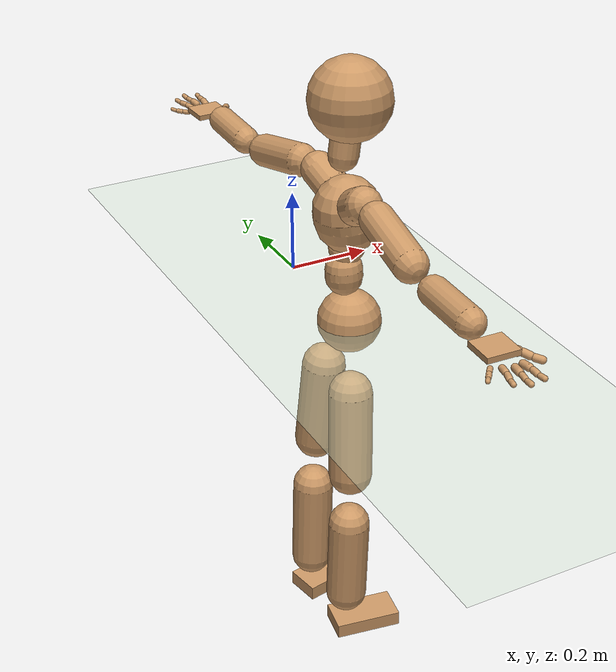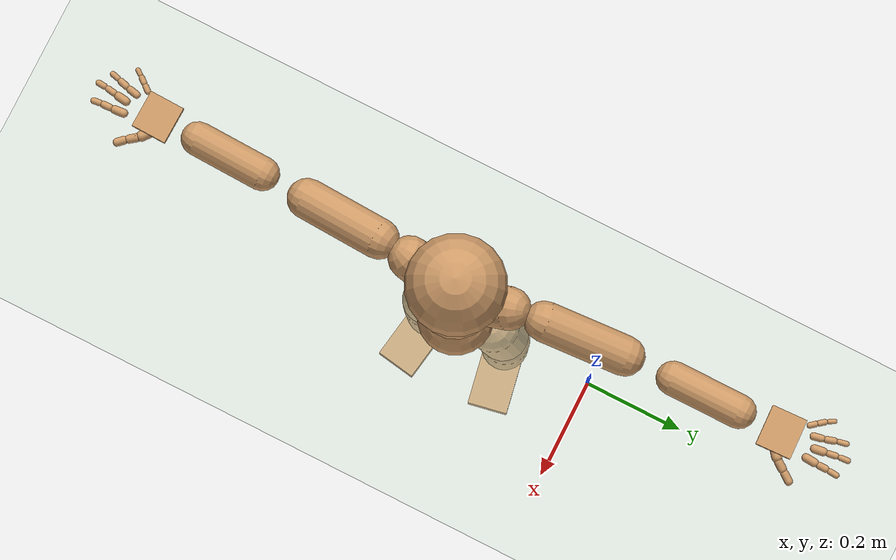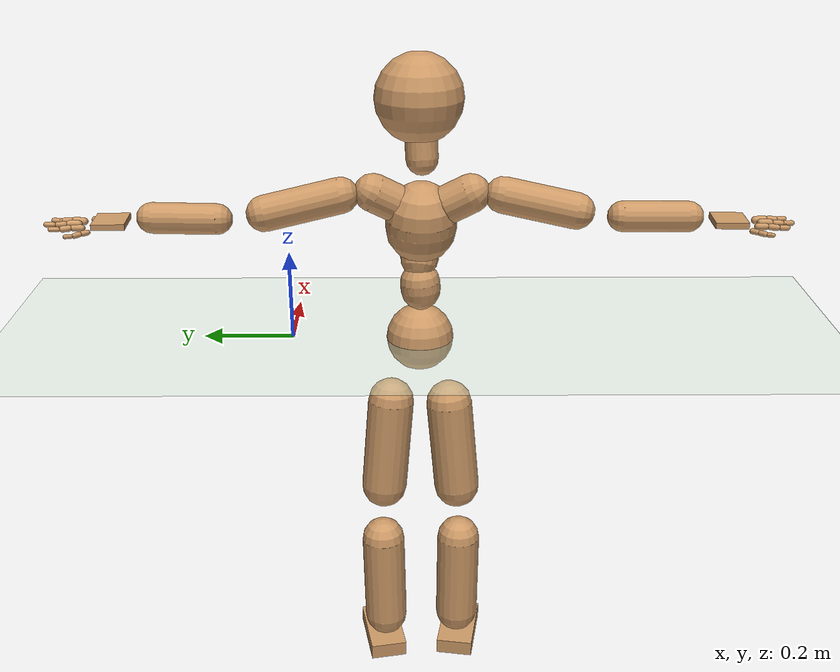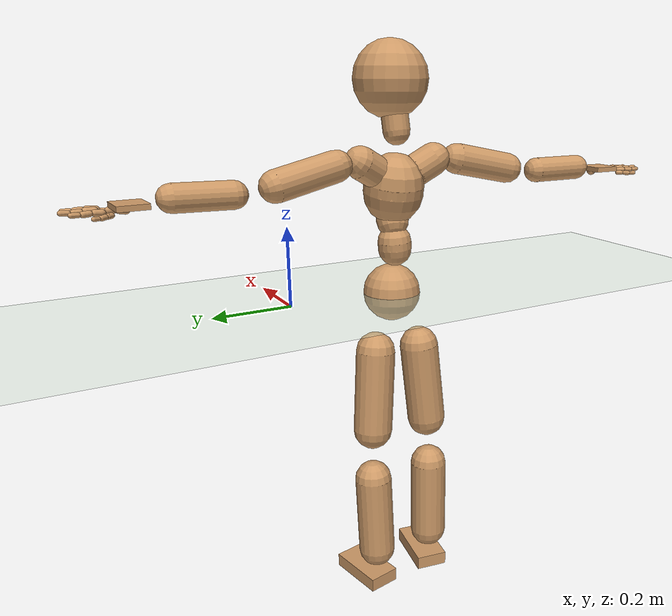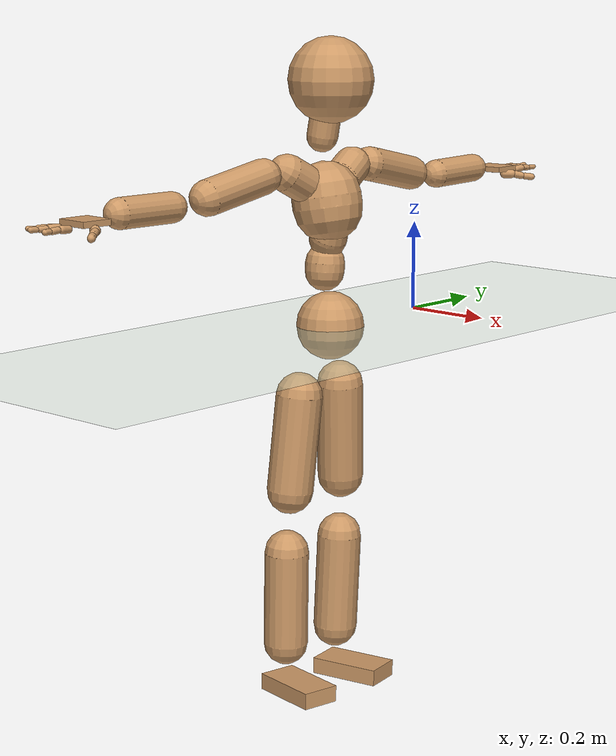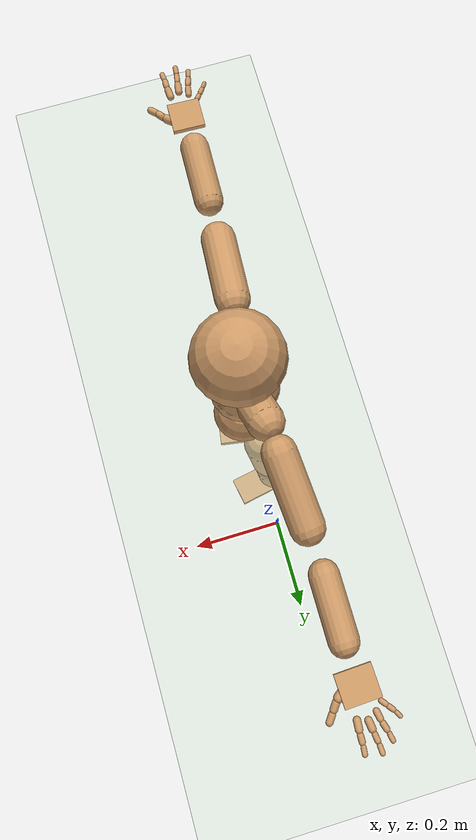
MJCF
<mujoco model="humanoid">
  <compiler coordinate="local" angle="radian"/>
  <default>
    <joint damping="0.0" armature="0.01" stiffness="0.0" limited="true"/>
    <geom conaffinity="1" condim="3" contype="7" margin="0.001" rgba="0.8 0.6 .4 1"/>
  </default>
  <asset>
    <texture type="skybox" builtin="gradient" rgb1=".4 .5 .6" rgb2="0 0 0" width="100" height="100"/>
    <texture builtin="flat" height="1278" mark="cross" markrgb="1 1 1" name="texgeom" random="0.01" rgb1="0.8 0.6 0.4" rgb2="0.8 0.6 0.4" type="cube" width="127"/>
    <texture builtin="checker" height="100" name="texplane" rgb1="0 0 0" rgb2="0.8 0.8 0.8" type="2d" width="100"/>
    <material name="MatPlane" reflectance="0.5" shininess="1" specular="1" texrepeat="60 60" texture="texplane"/>
    <material name="geom" texture="texgeom" texuniform="true"/>
  </asset>
  <worldbody>
    <light cutoff="100" diffuse="1 1 1" dir="-0 0 -1.3" directional="true" exponent="1" pos="0 0 1.3" specular=".1 .1 .1"/>
    <geom conaffinity="1" condim="3" name="floor" pos="0 0 0" rgba="0.8 0.9 0.8 1" size="100 100 .2" type="plane" material="MatPlane"/>
    <body name="Pelvis" pos="0.0004 -0.2873 -0.0012">
      <freejoint name="Pelvis"/>
      <geom type="sphere" contype="1" conaffinity="1" density="500" size="0.0757" pos="0.0000 0.0000 0.0000" name="Pelvis"/>
      <body name="L_Hip" pos="-0.0268 0.0611 -0.0744">
        <joint name="L_Hip_x" type="hinge" pos="0 0 0" axis="1 0 0" stiffness="800" damping="80" armature="0.02" range="-180.0000 180.0000"/>
        <joint name="L_Hip_y" type="hinge" pos="0 0 0" axis="0 1 0" stiffness="800" damping="80" armature="0.02" range="-180.0000 180.0000"/>
        <joint name="L_Hip_z" type="hinge" pos="0 0 0" axis="0 0 1" stiffness="800" damping="80" armature="0.02" range="-180.0000 180.0000"/>
        <geom type="capsule" contype="1" conaffinity="1" density="500" fromto="-0.0044 0.0059 -0.0731 -0.0175 0.0237 -0.2922" size="0.0523" name="L_Hip"/>
        <body name="L_Knee" pos="-0.0219 0.0296 -0.3653">
          <joint name="L_Knee_x" type="hinge" pos="0 0 0" axis="1 0 0" stiffness="800" damping="80" armature="0.02" range="-180.0000 180.0000"/>
          <joint name="L_Knee_y" type="hinge" pos="0 0 0" axis="0 1 0" stiffness="800" damping="80" armature="0.02" range="-180.0000 180.0000"/>
          <joint name="L_Knee_z" type="hinge" pos="0 0 0" axis="0 0 1" stiffness="800" damping="80" armature="0.02" range="-180.0000 180.0000"/>
          <geom type="capsule" contype="1" conaffinity="1" density="500" fromto="-0.0028 -0.0015 -0.0734 -0.0111 -0.0059 -0.2934" size="0.0503" name="L_Knee"/>
          <body name="L_Ankle" pos="-0.0139 -0.0074 -0.3668">
            <joint name="L_Ankle_x" type="hinge" pos="0 0 0" axis="1 0 0" stiffness="800" damping="80" armature="0.02" range="-180.0000 180.0000"/>
            <joint name="L_Ankle_y" type="hinge" pos="0 0 0" axis="0 1 0" stiffness="800" damping="80" armature="0.02" range="-180.0000 180.0000"/>
            <joint name="L_Ankle_z" type="hinge" pos="0 0 0" axis="0 0 1" stiffness="800" damping="80" armature="0.02" range="-180.0000 180.0000"/>
            <geom type="box" contype="1" conaffinity="1" density="500" pos="0.0518 0.0098 -0.0215" size="0.0817 0.0434 0.0185" quat="0.9956 0.0000 0.0000 0.0933" name="L_Ankle"/>
            <body name="L_Toe" pos="0.1036 0.0196 -0.0431">
              <joint name="L_Toe_x" type="hinge" pos="0 0 0" axis="1 0 0" stiffness="500" damping="50" armature="0.02" range="-180.0000 180.0000"/>
              <joint name="L_Toe_y" type="hinge" pos="0 0 0" axis="0 1 0" stiffness="500" damping="50" armature="0.02" range="-180.0000 180.0000"/>
              <joint name="L_Toe_z" type="hinge" pos="0 0 0" axis="0 0 1" stiffness="500" damping="50" armature="0.02" range="-180.0000 180.0000"/>
              <geom type="box" contype="1" conaffinity="1" density="500" pos="0.0000 0.0000 0.0223" size="0.0009 0.0022 0.001" quat="0.9949 0.0000 0.0000 0.1006" name="L_Toe"/>
            </body>
          </body>
        </body>
      </body>
      <body name="R_Hip" pos="-0.0282 -0.0604 -0.0813">
        <joint name="R_Hip_x" type="hinge" pos="0 0 0" axis="1 0 0" stiffness="800" damping="80" armature="0.02" range="-180.0000 180.0000"/>
        <joint name="R_Hip_y" type="hinge" pos="0 0 0" axis="0 1 0" stiffness="800" damping="80" armature="0.02" range="-180.0000 180.0000"/>
        <joint name="R_Hip_z" type="hinge" pos="0 0 0" axis="0 0 1" stiffness="800" damping="80" armature="0.02" range="-180.0000 180.0000"/>
        <geom type="capsule" contype="1" conaffinity="1" density="500" fromto="-0.0033 -0.0066 -0.0721 -0.0132 -0.0265 -0.2884" size="0.0522" name="R_Hip"/>
        <body name="R_Knee" pos="-0.0165 -0.0331 -0.3605">
          <joint name="R_Knee_x" type="hinge" pos="0 0 0" axis="1 0 0" stiffness="800" damping="80" armature="0.02" range="-180.0000 180.0000"/>
          <joint name="R_Knee_y" type="hinge" pos="0 0 0" axis="0 1 0" stiffness="800" damping="80" armature="0.02" range="-180.0000 180.0000"/>
          <joint name="R_Knee_z" type="hinge" pos="0 0 0" axis="0 0 1" stiffness="800" damping="80" armature="0.02" range="-180.0000 180.0000"/>
          <geom type="capsule" contype="1" conaffinity="1" density="500" fromto="-0.0019 0.0007 -0.0718 -0.0076 0.0027 -0.2870" size="0.0503" name="R_Knee"/>
          <body name="R_Ankle" pos="-0.0095 0.0034 -0.3588">
            <joint name="R_Ankle_x" type="hinge" pos="0 0 0" axis="1 0 0" stiffness="800" damping="80" armature="0.02" range="-180.0000 180.0000"/>
            <joint name="R_Ankle_y" type="hinge" pos="0 0 0" axis="0 1 0" stiffness="800" damping="80" armature="0.02" range="-180.0000 180.0000"/>
            <joint name="R_Ankle_z" type="hinge" pos="0 0 0" axis="0 0 1" stiffness="800" damping="80" armature="0.02" range="-180.0000 180.0000"/>
            <geom type="box" contype="1" conaffinity="1" density="500" pos="0.0485 -0.0079 -0.0233" size="0.0817 0.0434 0.0185" quat="0.9968 0.0000 0.0000 -0.0803" name="R_Ankle"/>
            <body name="R_Toe" pos="0.097 -0.0157 -0.0467">
              <joint name="R_Toe_x" type="hinge" pos="0 0 0" axis="1 0 0" stiffness="500" damping="50" armature="0.02" range="-180.0000 180.0000"/>
              <joint name="R_Toe_y" type="hinge" pos="0 0 0" axis="0 1 0" stiffness="500" damping="50" armature="0.02" range="-180.0000 180.0000"/>
              <joint name="R_Toe_z" type="hinge" pos="0 0 0" axis="0 0 1" stiffness="500" damping="50" armature="0.02" range="-180.0000 180.0000"/>
              <geom type="box" contype="1" conaffinity="1" density="500" pos="0.0000 0.0000 0.0241" size="0.0009 0.0022 0.001" quat="0.9976 0.0000 0.0000 -0.0689" name="R_Toe"/>
            </body>
          </body>
        </body>
      </body>
      <body name="Torso" pos="-0.0155 -0.0041 0.0821">
        <joint name="Torso_x" type="hinge" pos="0 0 0" axis="1 0 0" stiffness="1000" damping="100" armature="0.02" range="-180.0000 180.0000"/>
        <joint name="Torso_y" type="hinge" pos="0 0 0" axis="0 1 0" stiffness="1000" damping="100" armature="0.02" range="-180.0000 180.0000"/>
        <joint name="Torso_z" type="hinge" pos="0 0 0" axis="0 0 1" stiffness="1000" damping="100" armature="0.02" range="-180.0000 180.0000"/>
        <geom type="capsule" contype="1" conaffinity="1" density="500" fromto="-0.0001 0.0041 0.0567 -0.0001 0.0027 0.0378" size="0.0439" name="Torso"/>
        <body name="Spine" pos="-0.0002 0.0068 0.0946">
          <joint name="Spine_x" type="hinge" pos="0 0 0" axis="1 0 0" stiffness="1000" damping="100" armature="0.02" range="-180.0000 180.0000"/>
          <joint name="Spine_y" type="hinge" pos="0 0 0" axis="0 1 0" stiffness="1000" damping="100" armature="0.02" range="-180.0000 180.0000"/>
          <joint name="Spine_z" type="hinge" pos="0 0 0" axis="0 0 1" stiffness="1000" damping="100" armature="0.02" range="-180.0000 180.0000"/>
          <geom type="capsule" contype="1" conaffinity="1" density="500" fromto="0.0108 -0.0023 0.0220 0.0072 -0.0015 0.0147" size="0.0419" name="Spine"/>
          <body name="Chest" pos="0.018 -0.0038 0.0367">
            <joint name="Chest_x" type="hinge" pos="0 0 0" axis="1 0 0" stiffness="1000" damping="100" armature="0.02" range="-180.0000 180.0000"/>
            <joint name="Chest_y" type="hinge" pos="0 0 0" axis="0 1 0" stiffness="1000" damping="100" armature="0.02" range="-180.0000 180.0000"/>
            <joint name="Chest_z" type="hinge" pos="0 0 0" axis="0 0 1" stiffness="1000" damping="100" armature="0.02" range="-180.0000 180.0000"/>
            <geom type="capsule" contype="1" conaffinity="1" density="500" fromto="-0.0126 -0.0013 0.0733 -0.0084 -0.0008 0.0489" size="0.0775" name="Chest"/>
            <body name="Neck" pos="-0.0275 -0.0045 0.1722">
              <joint name="Neck_x" type="hinge" pos="0 0 0" axis="1 0 0" stiffness="500" damping="50" armature="0.02" range="-180.0000 180.0000"/>
              <joint name="Neck_y" type="hinge" pos="0 0 0" axis="0 1 0" stiffness="500" damping="50" armature="0.02" range="-180.0000 180.0000"/>
              <joint name="Neck_z" type="hinge" pos="0 0 0" axis="0 0 1" stiffness="500" damping="50" armature="0.02" range="-180.0000 180.0000"/>
              <geom type="capsule" contype="1" conaffinity="1" density="500" fromto="0.0048 0.0015 0.0307 0.0192 0.0060 0.1226" size="0.0346" name="Neck"/>
              <body name="Head" pos="0.024 0.0075 0.1533">
                <joint name="Head_x" type="hinge" pos="0 0 0" axis="1 0 0" stiffness="500" damping="50" armature="0.02" range="-180.0000 180.0000"/>
                <joint name="Head_y" type="hinge" pos="0 0 0" axis="0 1 0" stiffness="500" damping="50" armature="0.02" range="-180.0000 180.0000"/>
                <joint name="Head_z" type="hinge" pos="0 0 0" axis="0 0 1" stiffness="500" damping="50" armature="0.02" range="-180.0000 180.0000"/>
                <geom type="sphere" contype="1" conaffinity="1" density="500" size="0.0946" pos="0.0000 0.0000 0.0000" name="Head"/>
              </body>
            </body>
            <body name="L_Thorax" pos="-0.0154 0.0416 0.099">
              <joint name="L_Thorax_x" type="hinge" pos="0 0 0" axis="1 0 0" stiffness="500" damping="50" armature="0.02" range="-180.0000 180.0000"/>
              <joint name="L_Thorax_y" type="hinge" pos="0 0 0" axis="0 1 0" stiffness="500" damping="50" armature="0.02" range="-180.0000 180.0000"/>
              <joint name="L_Thorax_z" type="hinge" pos="0 0 0" axis="0 0 1" stiffness="500" damping="50" armature="0.02" range="-180.0000 180.0000"/>
              <geom type="capsule" contype="1" conaffinity="1" density="500" fromto="-0.0034 0.0148 0.0083 -0.0137 0.0593 0.0331" size="0.0412" name="L_Thorax"/>
              <body name="L_Shoulder" pos="-0.0171 0.0741 0.0413">
                <joint name="L_Shoulder_x" type="hinge" pos="0 0 0" axis="1 0 0" stiffness="500" damping="50" armature="0.02" range="-180.0000 180.0000"/>
                <joint name="L_Shoulder_y" type="hinge" pos="0 0 0" axis="0 1 0" stiffness="500" damping="50" armature="0.02" range="-180.0000 180.0000"/>
                <joint name="L_Shoulder_z" type="hinge" pos="0 0 0" axis="0 0 1" stiffness="500" damping="50" armature="0.02" range="-180.0000 180.0000"/>
                <geom type="capsule" contype="1" conaffinity="1" density="500" fromto="-0.0047 0.0537 -0.0116 -0.0186 0.2149 -0.0466" size="0.0388" name="L_Shoulder"/>
                <body name="L_Elbow" pos="-0.0233 0.2686 -0.0582">
                  <joint name="L_Elbow_x" type="hinge" pos="0 0 0" axis="1 0 0" stiffness="500" damping="50" armature="0.02" range="-720.0000 720.0000"/>
                  <joint name="L_Elbow_y" type="hinge" pos="0 0 0" axis="0 1 0" stiffness="500" damping="50" armature="0.02" range="-720.0000 720.0000"/>
                  <joint name="L_Elbow_z" type="hinge" pos="0 0 0" axis="0 0 1" stiffness="500" damping="50" armature="0.02" range="-720.0000 720.0000"/>
                  <geom type="capsule" contype="1" conaffinity="1" density="500" fromto="0.0001 0.0457 0.0010 0.0004 0.1826 0.0040" size="0.0328" name="L_Elbow"/>
                  <body name="L_Wrist" pos="0.0005 0.2283 0.005">
                    <joint name="L_Wrist_x" type="hinge" pos="0 0 0" axis="1 0 0" stiffness="300" damping="30" armature="0.02" range="-180.0000 180.0000"/>
                    <joint name="L_Wrist_y" type="hinge" pos="0 0 0" axis="0 1 0" stiffness="300" damping="30" armature="0.02" range="-180.0000 180.0000"/>
                    <joint name="L_Wrist_z" type="hinge" pos="0 0 0" axis="0 0 1" stiffness="300" damping="30" armature="0.02" range="-180.0000 180.0000"/>
                    <geom type="box" contype="1" conaffinity="1" density="500" pos="-0.0017 0.0420 -0.0087" size="0.0349 0.0396 0.0063" quat="0.7213 0.0000 0.0000 -0.6927" name="L_Wrist"/>
                    <body name="L_Index1" pos="0.0187 0.0982 -0.0156">
                      <joint name="L_Index1_x" type="hinge" pos="0 0 0" axis="1 0 0" stiffness="100" damping="10" armature="0.02" range="-180.0000 180.0000"/>
                      <joint name="L_Index1_y" type="hinge" pos="0 0 0" axis="0 1 0" stiffness="100" damping="10" armature="0.02" range="-180.0000 180.0000"/>
                      <joint name="L_Index1_z" type="hinge" pos="0 0 0" axis="0 0 1" stiffness="100" damping="10" armature="0.02" range="-180.0000 180.0000"/>
                      <geom type="capsule" contype="1" conaffinity="1" density="500" fromto="0.0005 0.0061 0.0005 0.0021 0.0243 0.0018" size="0.0081" name="L_Index1"/>
                      <body name="L_Index2" pos="0.0026 0.0304 0.0023">
                        <joint name="L_Index2_x" type="hinge" pos="0 0 0" axis="1 0 0" stiffness="100" damping="10" armature="0.02" range="-180.0000 180.0000"/>
                        <joint name="L_Index2_y" type="hinge" pos="0 0 0" axis="0 1 0" stiffness="100" damping="10" armature="0.02" range="-180.0000 180.0000"/>
                        <joint name="L_Index2_z" type="hinge" pos="0 0 0" axis="0 0 1" stiffness="100" damping="10" armature="0.02" range="-180.0000 180.0000"/>
                        <geom type="capsule" contype="1" conaffinity="1" density="500" fromto="0.0001 0.0043 -0.0003 0.0003 0.0173 -0.0011" size="0.0069" name="L_Index2"/>
                        <body name="L_Index3" pos="0.0004 0.0216 -0.0014">
                          <joint name="L_Index3_x" type="hinge" pos="0 0 0" axis="1 0 0" stiffness="100" damping="10" armature="0.02" range="-180.0000 180.0000"/>
                          <joint name="L_Index3_y" type="hinge" pos="0 0 0" axis="0 1 0" stiffness="100" damping="10" armature="0.02" range="-180.0000 180.0000"/>
                          <joint name="L_Index3_z" type="hinge" pos="0 0 0" axis="0 0 1" stiffness="100" damping="10" armature="0.02" range="-180.0000 180.0000"/>
                          <geom type="capsule" contype="1" conaffinity="1" density="500" fromto="0.0005 0.0047 0.0001 0.0019 0.0189 0.0005" size="0.0058" name="L_Index3"/>
                        </body>
                      </body>
                    </body>
                    <body name="L_Middle1" pos="-0.0017 0.105 -0.0138">
                      <joint name="L_Middle1_x" type="hinge" pos="0 0 0" axis="1 0 0" stiffness="100" damping="10" armature="0.02" range="-180.0000 180.0000"/>
                      <joint name="L_Middle1_y" type="hinge" pos="0 0 0" axis="0 1 0" stiffness="100" damping="10" armature="0.02" range="-180.0000 180.0000"/>
                      <joint name="L_Middle1_z" type="hinge" pos="0 0 0" axis="0 0 1" stiffness="100" damping="10" armature="0.02" range="-180.0000 180.0000"/>
                      <geom type="capsule" contype="1" conaffinity="1" density="500" fromto="-0.0008 0.0058 0.0002 -0.0031 0.0231 0.0008" size="0.0082" name="L_Middle1"/>
                      <body name="L_Middle2" pos="-0.0039 0.0289 0.001">
                        <joint name="L_Middle2_x" type="hinge" pos="0 0 0" axis="1 0 0" stiffness="100" damping="10" armature="0.02" range="-180.0000 180.0000"/>
                        <joint name="L_Middle2_y" type="hinge" pos="0 0 0" axis="0 1 0" stiffness="100" damping="10" armature="0.02" range="-180.0000 180.0000"/>
                        <joint name="L_Middle2_z" type="hinge" pos="0 0 0" axis="0 0 1" stiffness="100" damping="10" armature="0.02" range="-180.0000 180.0000"/>
                        <geom type="capsule" contype="1" conaffinity="1" density="500" fromto="-0.0007 0.0045 -0.0001 -0.0029 0.0181 -0.0004" size="0.0063" name="L_Middle2"/>
                        <body name="L_Middle3" pos="-0.0036 0.0226 -0.0005">
                          <joint name="L_Middle3_x" type="hinge" pos="0 0 0" axis="1 0 0" stiffness="100" damping="10" armature="0.02" range="-180.0000 180.0000"/>
                          <joint name="L_Middle3_y" type="hinge" pos="0 0 0" axis="0 1 0" stiffness="100" damping="10" armature="0.02" range="-180.0000 180.0000"/>
                          <joint name="L_Middle3_z" type="hinge" pos="0 0 0" axis="0 0 1" stiffness="100" damping="10" armature="0.02" range="-180.0000 180.0000"/>
                          <geom type="capsule" contype="1" conaffinity="1" density="500" fromto="-0.0003 0.0049 0.0003 -0.0013 0.0197 0.0012" size="0.0057" name="L_Middle3"/>
                        </body>
                      </body>
                    </body>
                    <body name="L_Pinky1" pos="-0.0363 0.0812 -0.0201">
                      <joint name="L_Pinky1_x" type="hinge" pos="0 0 0" axis="1 0 0" stiffness="100" damping="10" armature="0.02" range="-180.0000 180.0000"/>
                      <joint name="L_Pinky1_y" type="hinge" pos="0 0 0" axis="0 1 0" stiffness="100" damping="10" armature="0.02" range="-180.0000 180.0000"/>
                      <joint name="L_Pinky1_z" type="hinge" pos="0 0 0" axis="0 0 1" stiffness="100" damping="10" armature="0.02" range="-180.0000 180.0000"/>
                      <geom type="capsule" contype="1" conaffinity="1" density="500" fromto="-0.0023 0.0028 -0.0001 -0.0091 0.0112 -0.0002" size="0.0059" name="L_Pinky1"/>
                      <body name="L_Pinky2" pos="-0.0114 0.014 -0.0003">
                        <joint name="L_Pinky2_x" type="hinge" pos="0 0 0" axis="1 0 0" stiffness="100" damping="10" armature="0.02" range="-180.0000 180.0000"/>
                        <joint name="L_Pinky2_y" type="hinge" pos="0 0 0" axis="0 1 0" stiffness="100" damping="10" armature="0.02" range="-180.0000 180.0000"/>
                        <joint name="L_Pinky2_z" type="hinge" pos="0 0 0" axis="0 0 1" stiffness="100" damping="10" armature="0.02" range="-180.0000 180.0000"/>
                        <geom type="capsule" contype="1" conaffinity="1" density="500" fromto="-0.0023 0.0029 -0.0001 -0.0090 0.0114 -0.0005" size="0.0058" name="L_Pinky2"/>
                        <body name="L_Pinky3" pos="-0.0113 0.0143 -0.0006">
                          <joint name="L_Pinky3_x" type="hinge" pos="0 0 0" axis="1 0 0" stiffness="100" damping="10" armature="0.02" range="-180.0000 180.0000"/>
                          <joint name="L_Pinky3_y" type="hinge" pos="0 0 0" axis="0 1 0" stiffness="100" damping="10" armature="0.02" range="-180.0000 180.0000"/>
                          <joint name="L_Pinky3_z" type="hinge" pos="0 0 0" axis="0 0 1" stiffness="100" damping="10" armature="0.02" range="-180.0000 180.0000"/>
                          <geom type="capsule" contype="1" conaffinity="1" density="500" fromto="-0.0019 0.0033 0.0003 -0.0074 0.0130 0.0011" size="0.0046" name="L_Pinky3"/>
                        </body>
                      </body>
                    </body>
                    <body name="L_Ring1" pos="-0.0219 0.0937 -0.0159">
                      <joint name="L_Ring1_x" type="hinge" pos="0 0 0" axis="1 0 0" stiffness="100" damping="10" armature="0.02" range="-180.0000 180.0000"/>
                      <joint name="L_Ring1_y" type="hinge" pos="0 0 0" axis="0 1 0" stiffness="100" damping="10" armature="0.02" range="-180.0000 180.0000"/>
                      <joint name="L_Ring1_z" type="hinge" pos="0 0 0" axis="0 0 1" stiffness="100" damping="10" armature="0.02" range="-180.0000 180.0000"/>
                      <geom type="capsule" contype="1" conaffinity="1" density="500" fromto="-0.0010 0.0052 0.0003 -0.0041 0.0209 0.0013" size="0.0071" name="L_Ring1"/>
                      <body name="L_Ring2" pos="-0.0051 0.0261 0.0016">
                        <joint name="L_Ring2_x" type="hinge" pos="0 0 0" axis="1 0 0" stiffness="100" damping="10" armature="0.02" range="-180.0000 180.0000"/>
                        <joint name="L_Ring2_y" type="hinge" pos="0 0 0" axis="0 1 0" stiffness="100" damping="10" armature="0.02" range="-180.0000 180.0000"/>
                        <joint name="L_Ring2_z" type="hinge" pos="0 0 0" axis="0 0 1" stiffness="100" damping="10" armature="0.02" range="-180.0000 180.0000"/>
                        <geom type="capsule" contype="1" conaffinity="1" density="500" fromto="-0.0014 0.0043 -0.0001 -0.0054 0.0173 -0.0005" size="0.0067" name="L_Ring2"/>
                        <body name="L_Ring3" pos="-0.0068 0.0216 -0.0006">
                          <joint name="L_Ring3_x" type="hinge" pos="0 0 0" axis="1 0 0" stiffness="100" damping="10" armature="0.02" range="-180.0000 180.0000"/>
                          <joint name="L_Ring3_y" type="hinge" pos="0 0 0" axis="0 1 0" stiffness="100" damping="10" armature="0.02" range="-180.0000 180.0000"/>
                          <joint name="L_Ring3_z" type="hinge" pos="0 0 0" axis="0 0 1" stiffness="100" damping="10" armature="0.02" range="-180.0000 180.0000"/>
                          <geom type="capsule" contype="1" conaffinity="1" density="500" fromto="-0.0010 0.0047 0.0003 -0.0038 0.0189 0.0011" size="0.0054" name="L_Ring3"/>
                        </body>
                      </body>
                    </body>
                    <body name="L_Thumb1" pos="0.0242 0.042 -0.0212">
                      <joint name="L_Thumb1_x" type="hinge" pos="0 0 0" axis="1 0 0" stiffness="100" damping="10" armature="0.02" range="-180.0000 180.0000"/>
                      <joint name="L_Thumb1_y" type="hinge" pos="0 0 0" axis="0 1 0" stiffness="100" damping="10" armature="0.02" range="-180.0000 180.0000"/>
                      <joint name="L_Thumb1_z" type="hinge" pos="0 0 0" axis="0 0 1" stiffness="100" damping="10" armature="0.02" range="-180.0000 180.0000"/>
                      <geom type="capsule" contype="1" conaffinity="1" density="500" fromto="0.0044 0.0033 0.0000 0.0176 0.0133 0.0001" size="0.0106" name="L_Thumb1"/>
                      <body name="L_Thumb2" pos="0.022 0.0167 0.0002">
                        <joint name="L_Thumb2_x" type="hinge" pos="0 0 0" axis="1 0 0" stiffness="100" damping="10" armature="0.02" range="-180.0000 180.0000"/>
                        <joint name="L_Thumb2_y" type="hinge" pos="0 0 0" axis="0 1 0" stiffness="100" damping="10" armature="0.02" range="-180.0000 180.0000"/>
                        <joint name="L_Thumb2_z" type="hinge" pos="0 0 0" axis="0 0 1" stiffness="100" damping="10" armature="0.02" range="-180.0000 180.0000"/>
                        <geom type="capsule" contype="1" conaffinity="1" density="500" fromto="0.0027 0.0039 -0.0011 0.0109 0.0157 -0.0044" size="0.0085" name="L_Thumb2"/>
                        <body name="L_Thumb3" pos="0.0136 0.0196 -0.0055">
                          <joint name="L_Thumb3_x" type="hinge" pos="0 0 0" axis="1 0 0" stiffness="100" damping="10" armature="0.02" range="-180.0000 180.0000"/>
                          <joint name="L_Thumb3_y" type="hinge" pos="0 0 0" axis="0 1 0" stiffness="100" damping="10" armature="0.02" range="-180.0000 180.0000"/>
                          <joint name="L_Thumb3_z" type="hinge" pos="0 0 0" axis="0 0 1" stiffness="100" damping="10" armature="0.02" range="-180.0000 180.0000"/>
                          <geom type="capsule" contype="1" conaffinity="1" density="500" fromto="0.0031 0.0043 -0.0007 0.0125 0.0173 -0.0028" size="0.008" name="L_Thumb3"/>
                        </body>
                      </body>
                    </body>
                  </body>
                </body>
              </body>
            </body>
            <body name="R_Thorax" pos="-0.0203 -0.0433 0.0953">
              <joint name="R_Thorax_x" type="hinge" pos="0 0 0" axis="1 0 0" stiffness="500" damping="50" armature="0.02" range="-180.0000 180.0000"/>
              <joint name="R_Thorax_y" type="hinge" pos="0 0 0" axis="0 1 0" stiffness="500" damping="50" armature="0.02" range="-180.0000 180.0000"/>
              <joint name="R_Thorax_z" type="hinge" pos="0 0 0" axis="0 0 1" stiffness="500" damping="50" armature="0.02" range="-180.0000 180.0000"/>
              <geom type="capsule" contype="1" conaffinity="1" density="500" fromto="-0.0024 -0.0159 0.0088 -0.0097 -0.0635 0.0351" size="0.0421" name="R_Thorax"/>
              <body name="R_Shoulder" pos="-0.0121 -0.0794 0.0439">
                <joint name="R_Shoulder_x" type="hinge" pos="0 0 0" axis="1 0 0" stiffness="500" damping="50" armature="0.02" range="-180.0000 180.0000"/>
                <joint name="R_Shoulder_y" type="hinge" pos="0 0 0" axis="0 1 0" stiffness="500" damping="50" armature="0.02" range="-180.0000 180.0000"/>
                <joint name="R_Shoulder_z" type="hinge" pos="0 0 0" axis="0 0 1" stiffness="500" damping="50" armature="0.02" range="-180.0000 180.0000"/>
                <geom type="capsule" contype="1" conaffinity="1" density="500" fromto="-0.0034 -0.0520 -0.0107 -0.0135 -0.2079 -0.0429" size="0.0391" name="R_Shoulder"/>
                <body name="R_Elbow" pos="-0.0169 -0.2599 -0.0536">
                  <joint name="R_Elbow_x" type="hinge" pos="0 0 0" axis="1 0 0" stiffness="500" damping="50" armature="0.02" range="-720.0000 720.0000"/>
                  <joint name="R_Elbow_y" type="hinge" pos="0 0 0" axis="0 1 0" stiffness="500" damping="50" armature="0.02" range="-720.0000 720.0000"/>
                  <joint name="R_Elbow_z" type="hinge" pos="0 0 0" axis="0 0 1" stiffness="500" damping="50" armature="0.02" range="-720.0000 720.0000"/>
                  <geom type="capsule" contype="1" conaffinity="1" density="500" fromto="-0.0014 -0.0459 0.0002 -0.0057 -0.1837 0.0007" size="0.033" name="R_Elbow"/>
                  <body name="R_Wrist" pos="-0.0071 -0.2296 0.0008">
                    <joint name="R_Wrist_x" type="hinge" pos="0 0 0" axis="1 0 0" stiffness="300" damping="30" armature="0.02" range="-180.0000 180.0000"/>
                    <joint name="R_Wrist_y" type="hinge" pos="0 0 0" axis="0 1 0" stiffness="300" damping="30" armature="0.02" range="-180.0000 180.0000"/>
                    <joint name="R_Wrist_z" type="hinge" pos="0 0 0" axis="0 0 1" stiffness="300" damping="30" armature="0.02" range="-180.0000 180.0000"/>
                    <geom type="box" contype="1" conaffinity="1" density="500" pos="-0.0012 -0.0414 -0.0083" size="0.0349 0.0371 0.0065" quat="0.7171 0.0000 0.0000 0.6970" name="R_Wrist"/>
                    <body name="R_Index1" pos="0.0198 -0.0971 -0.015">
                      <joint name="R_Index1_x" type="hinge" pos="0 0 0" axis="1 0 0" stiffness="100" damping="10" armature="0.02" range="-180.0000 180.0000"/>
                      <joint name="R_Index1_y" type="hinge" pos="0 0 0" axis="0 1 0" stiffness="100" damping="10" armature="0.02" range="-180.0000 180.0000"/>
                      <joint name="R_Index1_z" type="hinge" pos="0 0 0" axis="0 0 1" stiffness="100" damping="10" armature="0.02" range="-180.0000 180.0000"/>
                      <geom type="capsule" contype="1" conaffinity="1" density="500" fromto="0.0005 -0.0061 0.0005 0.0021 -0.0243 0.0018" size="0.0081" name="R_Index1"/>
                      <body name="R_Index2" pos="0.0026 -0.0304 0.0023">
                        <joint name="R_Index2_x" type="hinge" pos="0 0 0" axis="1 0 0" stiffness="100" damping="10" armature="0.02" range="-180.0000 180.0000"/>
                        <joint name="R_Index2_y" type="hinge" pos="0 0 0" axis="0 1 0" stiffness="100" damping="10" armature="0.02" range="-180.0000 180.0000"/>
                        <joint name="R_Index2_z" type="hinge" pos="0 0 0" axis="0 0 1" stiffness="100" damping="10" armature="0.02" range="-180.0000 180.0000"/>
                        <geom type="capsule" contype="1" conaffinity="1" density="500" fromto="0.0001 -0.0043 -0.0003 0.0003 -0.0173 -0.0011" size="0.0069" name="R_Index2"/>
                        <body name="R_Index3" pos="0.0004 -0.0216 -0.0014">
                          <joint name="R_Index3_x" type="hinge" pos="0 0 0" axis="1 0 0" stiffness="100" damping="10" armature="0.02" range="-180.0000 180.0000"/>
                          <joint name="R_Index3_y" type="hinge" pos="0 0 0" axis="0 1 0" stiffness="100" damping="10" armature="0.02" range="-180.0000 180.0000"/>
                          <joint name="R_Index3_z" type="hinge" pos="0 0 0" axis="0 0 1" stiffness="100" damping="10" armature="0.02" range="-180.0000 180.0000"/>
                          <geom type="capsule" contype="1" conaffinity="1" density="500" fromto="0.0005 -0.0039 0.0001 0.0019 -0.0157 0.0005" size="0.0061" name="R_Index3"/>
                        </body>
                      </body>
                    </body>
                    <body name="R_Middle1" pos="-0.0007 -0.1038 -0.0132">
                      <joint name="R_Middle1_x" type="hinge" pos="0 0 0" axis="1 0 0" stiffness="100" damping="10" armature="0.02" range="-180.0000 180.0000"/>
                      <joint name="R_Middle1_y" type="hinge" pos="0 0 0" axis="0 1 0" stiffness="100" damping="10" armature="0.02" range="-180.0000 180.0000"/>
                      <joint name="R_Middle1_z" type="hinge" pos="0 0 0" axis="0 0 1" stiffness="100" damping="10" armature="0.02" range="-180.0000 180.0000"/>
                      <geom type="capsule" contype="1" conaffinity="1" density="500" fromto="-0.0008 -0.0058 0.0002 -0.0031 -0.0231 0.0008" size="0.0082" name="R_Middle1"/>
                      <body name="R_Middle2" pos="-0.0039 -0.0289 0.001">
                        <joint name="R_Middle2_x" type="hinge" pos="0 0 0" axis="1 0 0" stiffness="100" damping="10" armature="0.02" range="-180.0000 180.0000"/>
                        <joint name="R_Middle2_y" type="hinge" pos="0 0 0" axis="0 1 0" stiffness="100" damping="10" armature="0.02" range="-180.0000 180.0000"/>
                        <joint name="R_Middle2_z" type="hinge" pos="0 0 0" axis="0 0 1" stiffness="100" damping="10" armature="0.02" range="-180.0000 180.0000"/>
                        <geom type="capsule" contype="1" conaffinity="1" density="500" fromto="-0.0007 -0.0045 -0.0001 -0.0029 -0.0181 -0.0004" size="0.0063" name="R_Middle2"/>
                        <body name="R_Middle3" pos="-0.0036 -0.0226 -0.0005">
                          <joint name="R_Middle3_x" type="hinge" pos="0 0 0" axis="1 0 0" stiffness="100" damping="10" armature="0.02" range="-180.0000 180.0000"/>
                          <joint name="R_Middle3_y" type="hinge" pos="0 0 0" axis="0 1 0" stiffness="100" damping="10" armature="0.02" range="-180.0000 180.0000"/>
                          <joint name="R_Middle3_z" type="hinge" pos="0 0 0" axis="0 0 1" stiffness="100" damping="10" armature="0.02" range="-180.0000 180.0000"/>
                          <geom type="capsule" contype="1" conaffinity="1" density="500" fromto="-0.0003 -0.0041 0.0003 -0.0013 -0.0165 0.0012" size="0.006" name="R_Middle3"/>
                        </body>
                      </body>
                    </body>
                    <body name="R_Pinky1" pos="-0.0353 -0.08 -0.0194">
                      <joint name="R_Pinky1_x" type="hinge" pos="0 0 0" axis="1 0 0" stiffness="100" damping="10" armature="0.02" range="-180.0000 180.0000"/>
                      <joint name="R_Pinky1_y" type="hinge" pos="0 0 0" axis="0 1 0" stiffness="100" damping="10" armature="0.02" range="-180.0000 180.0000"/>
                      <joint name="R_Pinky1_z" type="hinge" pos="0 0 0" axis="0 0 1" stiffness="100" damping="10" armature="0.02" range="-180.0000 180.0000"/>
                      <geom type="capsule" contype="1" conaffinity="1" density="500" fromto="-0.0023 -0.0028 -0.0001 -0.0091 -0.0112 -0.0002" size="0.0059" name="R_Pinky1"/>
                      <body name="R_Pinky2" pos="-0.0114 -0.014 -0.0003">
                        <joint name="R_Pinky2_x" type="hinge" pos="0 0 0" axis="1 0 0" stiffness="100" damping="10" armature="0.02" range="-180.0000 180.0000"/>
                        <joint name="R_Pinky2_y" type="hinge" pos="0 0 0" axis="0 1 0" stiffness="100" damping="10" armature="0.02" range="-180.0000 180.0000"/>
                        <joint name="R_Pinky2_z" type="hinge" pos="0 0 0" axis="0 0 1" stiffness="100" damping="10" armature="0.02" range="-180.0000 180.0000"/>
                        <geom type="capsule" contype="1" conaffinity="1" density="500" fromto="-0.0023 -0.0029 -0.0001 -0.0090 -0.0114 -0.0005" size="0.0058" name="R_Pinky2"/>
                        <body name="R_Pinky3" pos="-0.0113 -0.0143 -0.0006">
                          <joint name="R_Pinky3_x" type="hinge" pos="0 0 0" axis="1 0 0" stiffness="100" damping="10" armature="0.02" range="-180.0000 180.0000"/>
                          <joint name="R_Pinky3_y" type="hinge" pos="0 0 0" axis="0 1 0" stiffness="100" damping="10" armature="0.02" range="-180.0000 180.0000"/>
                          <joint name="R_Pinky3_z" type="hinge" pos="0 0 0" axis="0 0 1" stiffness="100" damping="10" armature="0.02" range="-180.0000 180.0000"/>
                          <geom type="capsule" contype="1" conaffinity="1" density="500" fromto="-0.0019 -0.0025 0.0003 -0.0074 -0.0098 0.0011" size="0.0049" name="R_Pinky3"/>
                        </body>
                      </body>
                    </body>
                    <body name="R_Ring1" pos="-0.0208 -0.0925 -0.0152">
                      <joint name="R_Ring1_x" type="hinge" pos="0 0 0" axis="1 0 0" stiffness="100" damping="10" armature="0.02" range="-180.0000 180.0000"/>
                      <joint name="R_Ring1_y" type="hinge" pos="0 0 0" axis="0 1 0" stiffness="100" damping="10" armature="0.02" range="-180.0000 180.0000"/>
                      <joint name="R_Ring1_z" type="hinge" pos="0 0 0" axis="0 0 1" stiffness="100" damping="10" armature="0.02" range="-180.0000 180.0000"/>
                      <geom type="capsule" contype="1" conaffinity="1" density="500" fromto="-0.0010 -0.0052 0.0003 -0.0041 -0.0209 0.0013" size="0.0071" name="R_Ring1"/>
                      <body name="R_Ring2" pos="-0.0051 -0.0261 0.0016">
                        <joint name="R_Ring2_x" type="hinge" pos="0 0 0" axis="1 0 0" stiffness="100" damping="10" armature="0.02" range="-180.0000 180.0000"/>
                        <joint name="R_Ring2_y" type="hinge" pos="0 0 0" axis="0 1 0" stiffness="100" damping="10" armature="0.02" range="-180.0000 180.0000"/>
                        <joint name="R_Ring2_z" type="hinge" pos="0 0 0" axis="0 0 1" stiffness="100" damping="10" armature="0.02" range="-180.0000 180.0000"/>
                        <geom type="capsule" contype="1" conaffinity="1" density="500" fromto="-0.0014 -0.0043 -0.0001 -0.0054 -0.0173 -0.0005" size="0.0067" name="R_Ring2"/>
                        <body name="R_Ring3" pos="-0.0068 -0.0216 -0.0006">
                          <joint name="R_Ring3_x" type="hinge" pos="0 0 0" axis="1 0 0" stiffness="100" damping="10" armature="0.02" range="-180.0000 180.0000"/>
                          <joint name="R_Ring3_y" type="hinge" pos="0 0 0" axis="0 1 0" stiffness="100" damping="10" armature="0.02" range="-180.0000 180.0000"/>
                          <joint name="R_Ring3_z" type="hinge" pos="0 0 0" axis="0 0 1" stiffness="100" damping="10" armature="0.02" range="-180.0000 180.0000"/>
                          <geom type="capsule" contype="1" conaffinity="1" density="500" fromto="-0.0010 -0.0039 0.0003 -0.0038 -0.0157 0.0011" size="0.0056" name="R_Ring3"/>
                        </body>
                      </body>
                    </body>
                    <body name="R_Thumb1" pos="0.0253 -0.0408 -0.0206">
                      <joint name="R_Thumb1_x" type="hinge" pos="0 0 0" axis="1 0 0" stiffness="100" damping="10" armature="0.02" range="-180.0000 180.0000"/>
                      <joint name="R_Thumb1_y" type="hinge" pos="0 0 0" axis="0 1 0" stiffness="100" damping="10" armature="0.02" range="-180.0000 180.0000"/>
                      <joint name="R_Thumb1_z" type="hinge" pos="0 0 0" axis="0 0 1" stiffness="100" damping="10" armature="0.02" range="-180.0000 180.0000"/>
                      <geom type="capsule" contype="1" conaffinity="1" density="500" fromto="0.0044 -0.0033 0.0000 0.0176 -0.0133 0.0001" size="0.0106" name="R_Thumb1"/>
                      <body name="R_Thumb2" pos="0.022 -0.0167 0.0002">
                        <joint name="R_Thumb2_x" type="hinge" pos="0 0 0" axis="1 0 0" stiffness="100" damping="10" armature="0.02" range="-180.0000 180.0000"/>
                        <joint name="R_Thumb2_y" type="hinge" pos="0 0 0" axis="0 1 0" stiffness="100" damping="10" armature="0.02" range="-180.0000 180.0000"/>
                        <joint name="R_Thumb2_z" type="hinge" pos="0 0 0" axis="0 0 1" stiffness="100" damping="10" armature="0.02" range="-180.0000 180.0000"/>
                        <geom type="capsule" contype="1" conaffinity="1" density="500" fromto="0.0027 -0.0039 -0.0011 0.0109 -0.0157 -0.0044" size="0.0085" name="R_Thumb2"/>
                        <body name="R_Thumb3" pos="0.0136 -0.0196 -0.0055">
                          <joint name="R_Thumb3_x" type="hinge" pos="0 0 0" axis="1 0 0" stiffness="100" damping="10" armature="0.02" range="-180.0000 180.0000"/>
                          <joint name="R_Thumb3_y" type="hinge" pos="0 0 0" axis="0 1 0" stiffness="100" damping="10" armature="0.02" range="-180.0000 180.0000"/>
                          <joint name="R_Thumb3_z" type="hinge" pos="0 0 0" axis="0 0 1" stiffness="100" damping="10" armature="0.02" range="-180.0000 180.0000"/>
                          <geom type="capsule" contype="1" conaffinity="1" density="500" fromto="0.0031 -0.0035 -0.0007 0.0125 -0.0141 -0.0028" size="0.0082" name="R_Thumb3"/>
                        </body>
                      </body>
                    </body>
                  </body>
                </body>
              </body>
            </body>
          </body>
        </body>
      </body>
    </body>
  </worldbody>
  <actuator>
    <motor name="L_Hip_x" joint="L_Hip_x" gear="500"/>
    <motor name="L_Hip_y" joint="L_Hip_y" gear="500"/>
    <motor name="L_Hip_z" joint="L_Hip_z" gear="500"/>
    <motor name="L_Knee_x" joint="L_Knee_x" gear="500"/>
    <motor name="L_Knee_y" joint="L_Knee_y" gear="500"/>
    <motor name="L_Knee_z" joint="L_Knee_z" gear="500"/>
    <motor name="L_Ankle_x" joint="L_Ankle_x" gear="500"/>
    <motor name="L_Ankle_y" joint="L_Ankle_y" gear="500"/>
    <motor name="L_Ankle_z" joint="L_Ankle_z" gear="500"/>
    <motor name="L_Toe_x" joint="L_Toe_x" gear="500"/>
    <motor name="L_Toe_y" joint="L_Toe_y" gear="500"/>
    <motor name="L_Toe_z" joint="L_Toe_z" gear="500"/>
    <motor name="R_Hip_x" joint="R_Hip_x" gear="500"/>
    <motor name="R_Hip_y" joint="R_Hip_y" gear="500"/>
    <motor name="R_Hip_z" joint="R_Hip_z" gear="500"/>
    <motor name="R_Knee_x" joint="R_Knee_x" gear="500"/>
    <motor name="R_Knee_y" joint="R_Knee_y" gear="500"/>
    <motor name="R_Knee_z" joint="R_Knee_z" gear="500"/>
    <motor name="R_Ankle_x" joint="R_Ankle_x" gear="500"/>
    <motor name="R_Ankle_y" joint="R_Ankle_y" gear="500"/>
    <motor name="R_Ankle_z" joint="R_Ankle_z" gear="500"/>
    <motor name="R_Toe_x" joint="R_Toe_x" gear="500"/>
    <motor name="R_Toe_y" joint="R_Toe_y" gear="500"/>
    <motor name="R_Toe_z" joint="R_Toe_z" gear="500"/>
    <motor name="Torso_x" joint="Torso_x" gear="500"/>
    <motor name="Torso_y" joint="Torso_y" gear="500"/>
    <motor name="Torso_z" joint="Torso_z" gear="500"/>
    <motor name="Spine_x" joint="Spine_x" gear="500"/>
    <motor name="Spine_y" joint="Spine_y" gear="500"/>
    <motor name="Spine_z" joint="Spine_z" gear="500"/>
    <motor name="Chest_x" joint="Chest_x" gear="500"/>
    <motor name="Chest_y" joint="Chest_y" gear="500"/>
    <motor name="Chest_z" joint="Chest_z" gear="500"/>
    <motor name="Neck_x" joint="Neck_x" gear="500"/>
    <motor name="Neck_y" joint="Neck_y" gear="500"/>
    <motor name="Neck_z" joint="Neck_z" gear="500"/>
    <motor name="Head_x" joint="Head_x" gear="500"/>
    <motor name="Head_y" joint="Head_y" gear="500"/>
    <motor name="Head_z" joint="Head_z" gear="500"/>
    <motor name="L_Thorax_x" joint="L_Thorax_x" gear="500"/>
    <motor name="L_Thorax_y" joint="L_Thorax_y" gear="500"/>
    <motor name="L_Thorax_z" joint="L_Thorax_z" gear="500"/>
    <motor name="L_Shoulder_x" joint="L_Shoulder_x" gear="500"/>
    <motor name="L_Shoulder_y" joint="L_Shoulder_y" gear="500"/>
    <motor name="L_Shoulder_z" joint="L_Shoulder_z" gear="500"/>
    <motor name="L_Elbow_x" joint="L_Elbow_x" gear="500"/>
    <motor name="L_Elbow_y" joint="L_Elbow_y" gear="500"/>
    <motor name="L_Elbow_z" joint="L_Elbow_z" gear="500"/>
    <motor name="L_Wrist_x" joint="L_Wrist_x" gear="500"/>
    <motor name="L_Wrist_y" joint="L_Wrist_y" gear="500"/>
    <motor name="L_Wrist_z" joint="L_Wrist_z" gear="500"/>
    <motor name="L_Index1_x" joint="L_Index1_x" gear="500"/>
    <motor name="L_Index1_y" joint="L_Index1_y" gear="500"/>
    <motor name="L_Index1_z" joint="L_Index1_z" gear="500"/>
    <motor name="L_Index2_x" joint="L_Index2_x" gear="500"/>
    <motor name="L_Index2_y" joint="L_Index2_y" gear="500"/>
    <motor name="L_Index2_z" joint="L_Index2_z" gear="500"/>
    <motor name="L_Index3_x" joint="L_Index3_x" gear="500"/>
    <motor name="L_Index3_y" joint="L_Index3_y" gear="500"/>
    <motor name="L_Index3_z" joint="L_Index3_z" gear="500"/>
    <motor name="L_Middle1_x" joint="L_Middle1_x" gear="500"/>
    <motor name="L_Middle1_y" joint="L_Middle1_y" gear="500"/>
    <motor name="L_Middle1_z" joint="L_Middle1_z" gear="500"/>
    <motor name="L_Middle2_x" joint="L_Middle2_x" gear="500"/>
    <motor name="L_Middle2_y" joint="L_Middle2_y" gear="500"/>
    <motor name="L_Middle2_z" joint="L_Middle2_z" gear="500"/>
    <motor name="L_Middle3_x" joint="L_Middle3_x" gear="500"/>
    <motor name="L_Middle3_y" joint="L_Middle3_y" gear="500"/>
    <motor name="L_Middle3_z" joint="L_Middle3_z" gear="500"/>
    <motor name="L_Pinky1_x" joint="L_Pinky1_x" gear="500"/>
    <motor name="L_Pinky1_y" joint="L_Pinky1_y" gear="500"/>
    <motor name="L_Pinky1_z" joint="L_Pinky1_z" gear="500"/>
    <motor name="L_Pinky2_x" joint="L_Pinky2_x" gear="500"/>
    <motor name="L_Pinky2_y" joint="L_Pinky2_y" gear="500"/>
    <motor name="L_Pinky2_z" joint="L_Pinky2_z" gear="500"/>
    <motor name="L_Pinky3_x" joint="L_Pinky3_x" gear="500"/>
    <motor name="L_Pinky3_y" joint="L_Pinky3_y" gear="500"/>
    <motor name="L_Pinky3_z" joint="L_Pinky3_z" gear="500"/>
    <motor name="L_Ring1_x" joint="L_Ring1_x" gear="500"/>
    <motor name="L_Ring1_y" joint="L_Ring1_y" gear="500"/>
    <motor name="L_Ring1_z" joint="L_Ring1_z" gear="500"/>
    <motor name="L_Ring2_x" joint="L_Ring2_x" gear="500"/>
    <motor name="L_Ring2_y" joint="L_Ring2_y" gear="500"/>
    <motor name="L_Ring2_z" joint="L_Ring2_z" gear="500"/>
    <motor name="L_Ring3_x" joint="L_Ring3_x" gear="500"/>
    <motor name="L_Ring3_y" joint="L_Ring3_y" gear="500"/>
    <motor name="L_Ring3_z" joint="L_Ring3_z" gear="500"/>
    <motor name="L_Thumb1_x" joint="L_Thumb1_x" gear="500"/>
    <motor name="L_Thumb1_y" joint="L_Thumb1_y" gear="500"/>
    <motor name="L_Thumb1_z" joint="L_Thumb1_z" gear="500"/>
    <motor name="L_Thumb2_x" joint="L_Thumb2_x" gear="500"/>
    <motor name="L_Thumb2_y" joint="L_Thumb2_y" gear="500"/>
    <motor name="L_Thumb2_z" joint="L_Thumb2_z" gear="500"/>
    <motor name="L_Thumb3_x" joint="L_Thumb3_x" gear="500"/>
    <motor name="L_Thumb3_y" joint="L_Thumb3_y" gear="500"/>
    <motor name="L_Thumb3_z" joint="L_Thumb3_z" gear="500"/>
    <motor name="R_Thorax_x" joint="R_Thorax_x" gear="500"/>
    <motor name="R_Thorax_y" joint="R_Thorax_y" gear="500"/>
    <motor name="R_Thorax_z" joint="R_Thorax_z" gear="500"/>
    <motor name="R_Shoulder_x" joint="R_Shoulder_x" gear="500"/>
    <motor name="R_Shoulder_y" joint="R_Shoulder_y" gear="500"/>
    <motor name="R_Shoulder_z" joint="R_Shoulder_z" gear="500"/>
    <motor name="R_Elbow_x" joint="R_Elbow_x" gear="500"/>
    <motor name="R_Elbow_y" joint="R_Elbow_y" gear="500"/>
    <motor name="R_Elbow_z" joint="R_Elbow_z" gear="500"/>
    <motor name="R_Wrist_x" joint="R_Wrist_x" gear="500"/>
    <motor name="R_Wrist_y" joint="R_Wrist_y" gear="500"/>
    <motor name="R_Wrist_z" joint="R_Wrist_z" gear="500"/>
    <motor name="R_Index1_x" joint="R_Index1_x" gear="500"/>
    <motor name="R_Index1_y" joint="R_Index1_y" gear="500"/>
    <motor name="R_Index1_z" joint="R_Index1_z" gear="500"/>
    <motor name="R_Index2_x" joint="R_Index2_x" gear="500"/>
    <motor name="R_Index2_y" joint="R_Index2_y" gear="500"/>
    <motor name="R_Index2_z" joint="R_Index2_z" gear="500"/>
    <motor name="R_Index3_x" joint="R_Index3_x" gear="500"/>
    <motor name="R_Index3_y" joint="R_Index3_y" gear="500"/>
    <motor name="R_Index3_z" joint="R_Index3_z" gear="500"/>
    <motor name="R_Middle1_x" joint="R_Middle1_x" gear="500"/>
    <motor name="R_Middle1_y" joint="R_Middle1_y" gear="500"/>
    <motor name="R_Middle1_z" joint="R_Middle1_z" gear="500"/>
    <motor name="R_Middle2_x" joint="R_Middle2_x" gear="500"/>
    <motor name="R_Middle2_y" joint="R_Middle2_y" gear="500"/>
    <motor name="R_Middle2_z" joint="R_Middle2_z" gear="500"/>
    <motor name="R_Middle3_x" joint="R_Middle3_x" gear="500"/>
    <motor name="R_Middle3_y" joint="R_Middle3_y" gear="500"/>
    <motor name="R_Middle3_z" joint="R_Middle3_z" gear="500"/>
    <motor name="R_Pinky1_x" joint="R_Pinky1_x" gear="500"/>
    <motor name="R_Pinky1_y" joint="R_Pinky1_y" gear="500"/>
    <motor name="R_Pinky1_z" joint="R_Pinky1_z" gear="500"/>
    <motor name="R_Pinky2_x" joint="R_Pinky2_x" gear="500"/>
    <motor name="R_Pinky2_y" joint="R_Pinky2_y" gear="500"/>
    <motor name="R_Pinky2_z" joint="R_Pinky2_z" gear="500"/>
    <motor name="R_Pinky3_x" joint="R_Pinky3_x" gear="500"/>
    <motor name="R_Pinky3_y" joint="R_Pinky3_y" gear="500"/>
    <motor name="R_Pinky3_z" joint="R_Pinky3_z" gear="500"/>
    <motor name="R_Ring1_x" joint="R_Ring1_x" gear="500"/>
    <motor name="R_Ring1_y" joint="R_Ring1_y" gear="500"/>
    <motor name="R_Ring1_z" joint="R_Ring1_z" gear="500"/>
    <motor name="R_Ring2_x" joint="R_Ring2_x" gear="500"/>
    <motor name="R_Ring2_y" joint="R_Ring2_y" gear="500"/>
    <motor name="R_Ring2_z" joint="R_Ring2_z" gear="500"/>
    <motor name="R_Ring3_x" joint="R_Ring3_x" gear="500"/>
    <motor name="R_Ring3_y" joint="R_Ring3_y" gear="500"/>
    <motor name="R_Ring3_z" joint="R_Ring3_z" gear="500"/>
    <motor name="R_Thumb1_x" joint="R_Thumb1_x" gear="500"/>
    <motor name="R_Thumb1_y" joint="R_Thumb1_y" gear="500"/>
    <motor name="R_Thumb1_z" joint="R_Thumb1_z" gear="500"/>
    <motor name="R_Thumb2_x" joint="R_Thumb2_x" gear="500"/>
    <motor name="R_Thumb2_y" joint="R_Thumb2_y" gear="500"/>
    <motor name="R_Thumb2_z" joint="R_Thumb2_z" gear="500"/>
    <motor name="R_Thumb3_x" joint="R_Thumb3_x" gear="500"/>
    <motor name="R_Thumb3_y" joint="R_Thumb3_y" gear="500"/>
    <motor name="R_Thumb3_z" joint="R_Thumb3_z" gear="500"/>
  </actuator>
  <contact>
    <exclude body1="Torso" body2="Chest"/>
    <exclude body1="Head" body2="Chest"/>
    <exclude body1="R_Knee" body2="R_Toe"/>
    <exclude body1="R_Knee" body2="L_Ankle"/>
    <exclude body1="R_Knee" body2="L_Toe"/>
    <exclude body1="L_Knee" body2="L_Toe"/>
    <exclude body1="L_Knee" body2="R_Ankle"/>
    <exclude body1="L_Knee" body2="R_Toe"/>
    <exclude body1="L_Shoulder" body2="Chest"/>
    <exclude body1="R_Shoulder" body2="Chest"/>
  </contact>
  <sensor/>
  <size njmax="700" nconmax="700"/>
</mujoco>
